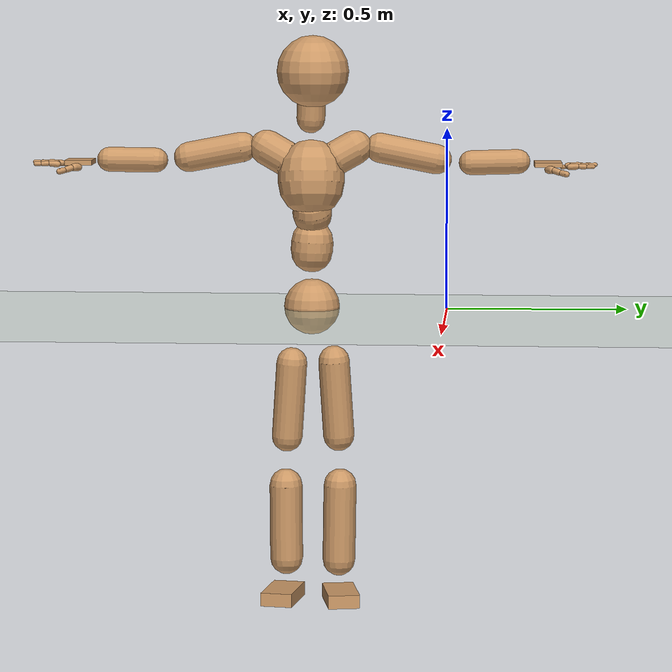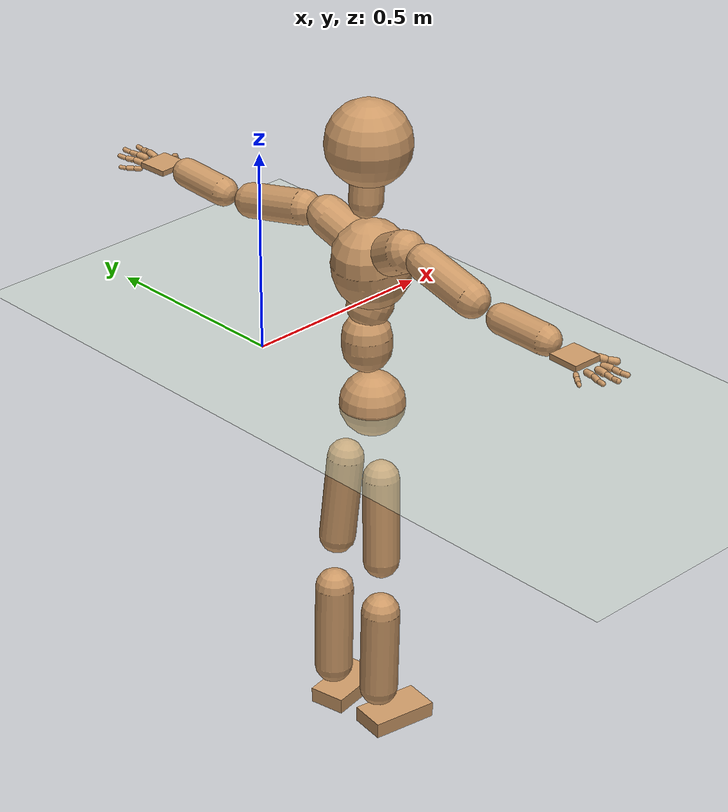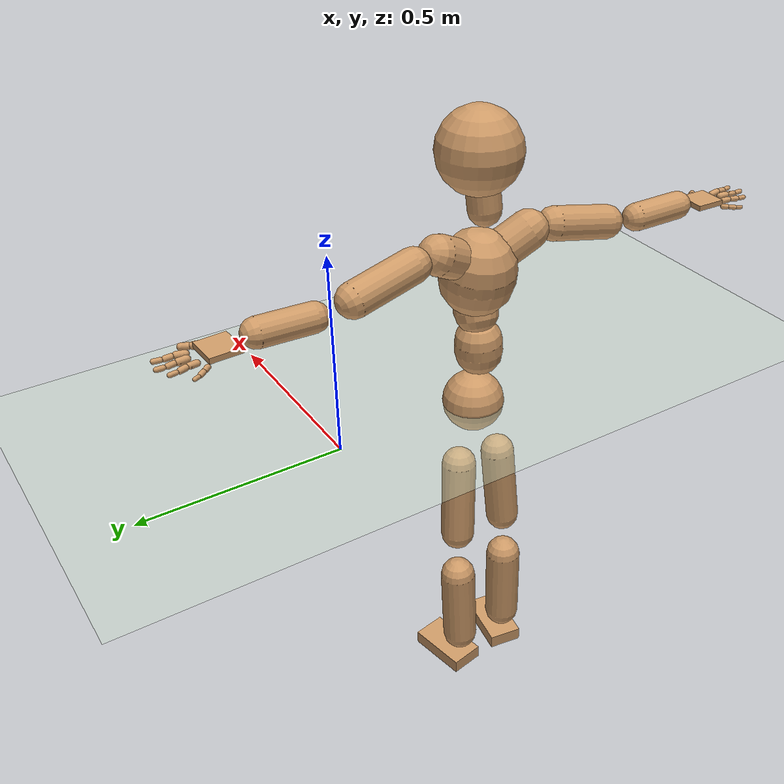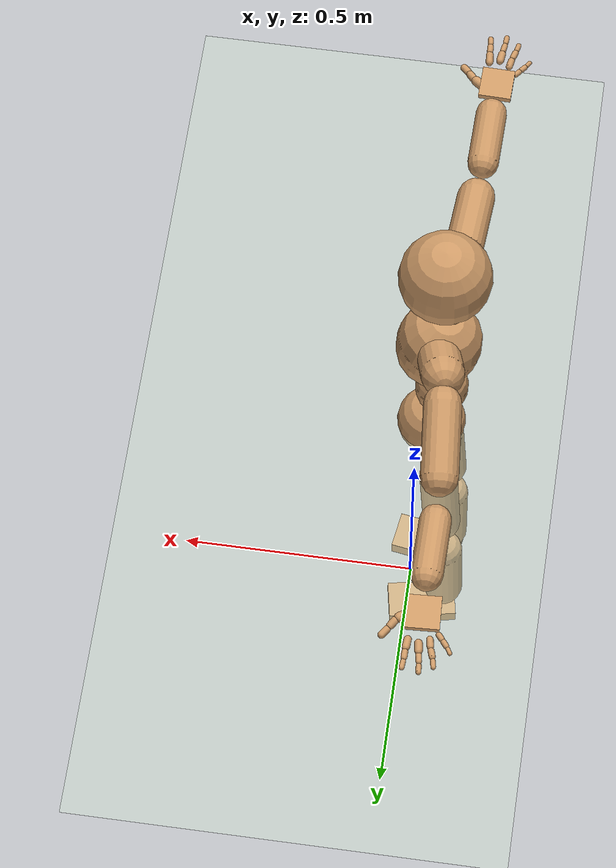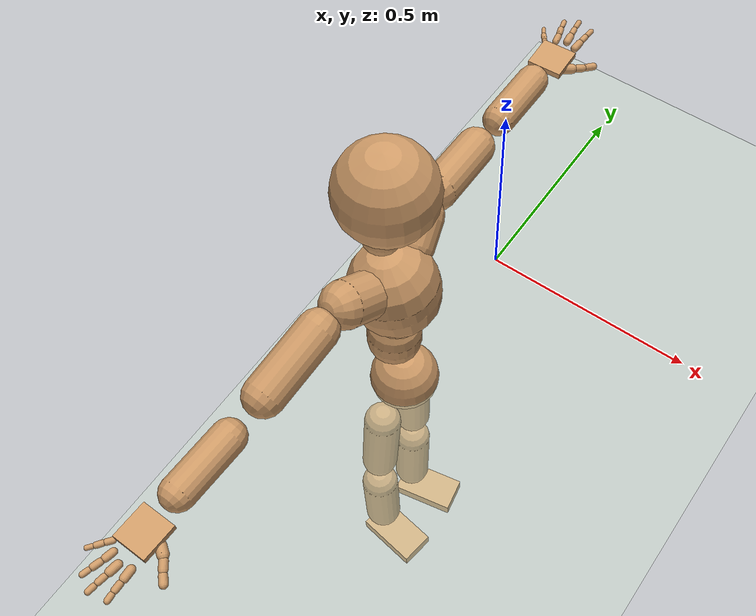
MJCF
<mujoco model="humanoid">
  <compiler coordinate="local" angle="radian"/>
  <default>
    <joint damping="0.0" armature="0.01" stiffness="0.0" limited="true"/>
    <geom conaffinity="1" condim="3" contype="7" margin="0.001" rgba="0.8 0.6 .4 1"/>
  </default>
  <asset>
    <texture type="skybox" builtin="gradient" rgb1=".4 .5 .6" rgb2="0 0 0" width="100" height="100"/>
    <texture builtin="flat" height="1278" mark="cross" markrgb="1 1 1" name="texgeom" random="0.01" rgb1="0.8 0.6 0.4" rgb2="0.8 0.6 0.4" type="cube" width="127"/>
    <texture builtin="checker" height="100" name="texplane" rgb1="0 0 0" rgb2="0.8 0.8 0.8" type="2d" width="100"/>
    <material name="MatPlane" reflectance="0.5" shininess="1" specular="1" texrepeat="60 60" texture="texplane"/>
    <material name="geom" texture="texgeom" texuniform="true"/>
  </asset>
  <worldbody>
    <light cutoff="100" diffuse="1 1 1" dir="-0 0 -1.3" directional="true" exponent="1" pos="0 0 1.3" specular=".1 .1 .1"/>
    <geom conaffinity="1" condim="3" name="floor" pos="0 0 0" rgba="0.8 0.9 0.8 1" size="100 100 .2" type="plane" material="MatPlane"/>
    <body name="Pelvis" pos="0 -0.3754 0.0023">
      <freejoint name="Pelvis"/>
      <geom type="sphere" contype="1" conaffinity="1" density="500" size="0.0777" pos="0.0000 0.0000 0.0000" name="Pelvis"/>
      <body name="L_Hip" pos="-0.0227 0.0554 -0.087">
        <joint name="L_Hip_x" type="hinge" pos="0 0 0" axis="1 0 0" stiffness="800" damping="80" armature="0.02" range="-180.0000 180.0000"/>
        <joint name="L_Hip_y" type="hinge" pos="0 0 0" axis="0 1 0" stiffness="800" damping="80" armature="0.02" range="-180.0000 180.0000"/>
        <joint name="L_Hip_z" type="hinge" pos="0 0 0" axis="0 0 1" stiffness="800" damping="80" armature="0.02" range="-180.0000 180.0000"/>
        <geom type="capsule" contype="1" conaffinity="1" density="500" fromto="-0.0049 0.0042 -0.0715 -0.0195 0.0169 -0.2861" size="0.0436" name="L_Hip"/>
        <body name="L_Knee" pos="-0.0243 0.0211 -0.3576">
          <joint name="L_Knee_x" type="hinge" pos="0 0 0" axis="1 0 0" stiffness="800" damping="80" armature="0.02" range="-180.0000 180.0000"/>
          <joint name="L_Knee_y" type="hinge" pos="0 0 0" axis="0 1 0" stiffness="800" damping="80" armature="0.02" range="-180.0000 180.0000"/>
          <joint name="L_Knee_z" type="hinge" pos="0 0 0" axis="0 0 1" stiffness="800" damping="80" armature="0.02" range="-180.0000 180.0000"/>
          <geom type="capsule" contype="1" conaffinity="1" density="500" fromto="-0.0022 -0.0012 -0.0722 -0.0087 -0.0049 -0.2888" size="0.0461" name="L_Knee"/>
          <body name="L_Ankle" pos="-0.0108 -0.0061 -0.361">
            <joint name="L_Ankle_x" type="hinge" pos="0 0 0" axis="1 0 0" stiffness="800" damping="80" armature="0.02" range="-180.0000 180.0000"/>
            <joint name="L_Ankle_y" type="hinge" pos="0 0 0" axis="0 1 0" stiffness="800" damping="80" armature="0.02" range="-180.0000 180.0000"/>
            <joint name="L_Ankle_z" type="hinge" pos="0 0 0" axis="0 0 1" stiffness="800" damping="80" armature="0.02" range="-180.0000 180.0000"/>
            <geom type="box" contype="1" conaffinity="1" density="500" pos="0.0521 0.0095 -0.0220" size="0.0811 0.0444 0.019" quat="0.9959 0.0000 0.0000 0.0905" name="L_Ankle"/>
            <body name="L_Toe" pos="0.1042 0.0191 -0.0439">
              <joint name="L_Toe_x" type="hinge" pos="0 0 0" axis="1 0 0" stiffness="500" damping="50" armature="0.02" range="-180.0000 180.0000"/>
              <joint name="L_Toe_y" type="hinge" pos="0 0 0" axis="0 1 0" stiffness="500" damping="50" armature="0.02" range="-180.0000 180.0000"/>
              <joint name="L_Toe_z" type="hinge" pos="0 0 0" axis="0 0 1" stiffness="500" damping="50" armature="0.02" range="-180.0000 180.0000"/>
              <geom type="box" contype="1" conaffinity="1" density="500" pos="0.0000 0.0000 0.0227" size="0.0009 0.0022 0.001" quat="0.9952 0.0000 0.0000 0.0978" name="L_Toe"/>
            </body>
          </body>
        </body>
      </body>
      <body name="R_Hip" pos="-0.0243 -0.0544 -0.0943">
        <joint name="R_Hip_x" type="hinge" pos="0 0 0" axis="1 0 0" stiffness="800" damping="80" armature="0.02" range="-180.0000 180.0000"/>
        <joint name="R_Hip_y" type="hinge" pos="0 0 0" axis="0 1 0" stiffness="800" damping="80" armature="0.02" range="-180.0000 180.0000"/>
        <joint name="R_Hip_z" type="hinge" pos="0 0 0" axis="0 0 1" stiffness="800" damping="80" armature="0.02" range="-180.0000 180.0000"/>
        <geom type="capsule" contype="1" conaffinity="1" density="500" fromto="-0.0038 -0.0048 -0.0705 -0.0153 -0.0191 -0.2820" size="0.0433" name="R_Hip"/>
        <body name="R_Knee" pos="-0.0191 -0.0238 -0.3525">
          <joint name="R_Knee_x" type="hinge" pos="0 0 0" axis="1 0 0" stiffness="800" damping="80" armature="0.02" range="-180.0000 180.0000"/>
          <joint name="R_Knee_y" type="hinge" pos="0 0 0" axis="0 1 0" stiffness="800" damping="80" armature="0.02" range="-180.0000 180.0000"/>
          <joint name="R_Knee_z" type="hinge" pos="0 0 0" axis="0 0 1" stiffness="800" damping="80" armature="0.02" range="-180.0000 180.0000"/>
          <geom type="capsule" contype="1" conaffinity="1" density="500" fromto="-0.0012 0.0003 -0.0706 -0.0049 0.0014 -0.2823" size="0.0462" name="R_Knee"/>
          <body name="R_Ankle" pos="-0.0061 0.0017 -0.3528">
            <joint name="R_Ankle_x" type="hinge" pos="0 0 0" axis="1 0 0" stiffness="800" damping="80" armature="0.02" range="-180.0000 180.0000"/>
            <joint name="R_Ankle_y" type="hinge" pos="0 0 0" axis="0 1 0" stiffness="800" damping="80" armature="0.02" range="-180.0000 180.0000"/>
            <joint name="R_Ankle_z" type="hinge" pos="0 0 0" axis="0 0 1" stiffness="800" damping="80" armature="0.02" range="-180.0000 180.0000"/>
            <geom type="box" contype="1" conaffinity="1" density="500" pos="0.0488 -0.0076 -0.0239" size="0.0811 0.0444 0.019" quat="0.9970 0.0000 0.0000 -0.0771" name="R_Ankle"/>
            <body name="R_Toe" pos="0.0976 -0.0152 -0.0478">
              <joint name="R_Toe_x" type="hinge" pos="0 0 0" axis="1 0 0" stiffness="500" damping="50" armature="0.02" range="-180.0000 180.0000"/>
              <joint name="R_Toe_y" type="hinge" pos="0 0 0" axis="0 1 0" stiffness="500" damping="50" armature="0.02" range="-180.0000 180.0000"/>
              <joint name="R_Toe_z" type="hinge" pos="0 0 0" axis="0 0 1" stiffness="500" damping="50" armature="0.02" range="-180.0000 180.0000"/>
              <geom type="box" contype="1" conaffinity="1" density="500" pos="0.0000 0.0000 0.0247" size="0.0009 0.0022 0.001" quat="0.9978 0.0000 0.0000 -0.0657" name="R_Toe"/>
            </body>
          </body>
        </body>
      </body>
      <body name="Torso" pos="-0.0193 -0.0039 0.0963">
        <joint name="Torso_x" type="hinge" pos="0 0 0" axis="1 0 0" stiffness="1000" damping="100" armature="0.02" range="-180.0000 180.0000"/>
        <joint name="Torso_y" type="hinge" pos="0 0 0" axis="0 1 0" stiffness="1000" damping="100" armature="0.02" range="-180.0000 180.0000"/>
        <joint name="Torso_z" type="hinge" pos="0 0 0" axis="0 0 1" stiffness="1000" damping="100" armature="0.02" range="-180.0000 180.0000"/>
        <geom type="capsule" contype="1" conaffinity="1" density="500" fromto="0.0004 0.0038 0.0848 0.0003 0.0025 0.0565" size="0.0588" name="Torso"/>
        <body name="Spine" pos="0.0007 0.0063 0.1413">
          <joint name="Spine_x" type="hinge" pos="0 0 0" axis="1 0 0" stiffness="1000" damping="100" armature="0.02" range="-180.0000 180.0000"/>
          <joint name="Spine_y" type="hinge" pos="0 0 0" axis="0 1 0" stiffness="1000" damping="100" armature="0.02" range="-180.0000 180.0000"/>
          <joint name="Spine_z" type="hinge" pos="0 0 0" axis="0 0 1" stiffness="1000" damping="100" armature="0.02" range="-180.0000 180.0000"/>
          <geom type="capsule" contype="1" conaffinity="1" density="500" fromto="0.0140 -0.0021 0.0294 0.0093 -0.0014 0.0196" size="0.0546" name="Spine"/>
          <body name="Chest" pos="0.0233 -0.0034 0.049">
            <joint name="Chest_x" type="hinge" pos="0 0 0" axis="1 0 0" stiffness="1000" damping="100" armature="0.02" range="-180.0000 180.0000"/>
            <joint name="Chest_y" type="hinge" pos="0 0 0" axis="0 1 0" stiffness="1000" damping="100" armature="0.02" range="-180.0000 180.0000"/>
            <joint name="Chest_z" type="hinge" pos="0 0 0" axis="0 0 1" stiffness="1000" damping="100" armature="0.02" range="-180.0000 180.0000"/>
            <geom type="capsule" contype="1" conaffinity="1" density="500" fromto="-0.0146 -0.0013 0.0869 -0.0097 -0.0009 0.0579" size="0.0924" name="Chest"/>
            <body name="Neck" pos="-0.036 -0.005 0.2022">
              <joint name="Neck_x" type="hinge" pos="0 0 0" axis="1 0 0" stiffness="500" damping="50" armature="0.02" range="-180.0000 180.0000"/>
              <joint name="Neck_y" type="hinge" pos="0 0 0" axis="0 1 0" stiffness="500" damping="50" armature="0.02" range="-180.0000 180.0000"/>
              <joint name="Neck_z" type="hinge" pos="0 0 0" axis="0 0 1" stiffness="500" damping="50" armature="0.02" range="-180.0000 180.0000"/>
              <geom type="capsule" contype="1" conaffinity="1" density="500" fromto="0.0035 0.0017 0.0330 0.0140 0.0068 0.1319" size="0.0397" name="Neck"/>
              <body name="Head" pos="0.0175 0.0085 0.1648">
                <joint name="Head_x" type="hinge" pos="0 0 0" axis="1 0 0" stiffness="500" damping="50" armature="0.02" range="-180.0000 180.0000"/>
                <joint name="Head_y" type="hinge" pos="0 0 0" axis="0 1 0" stiffness="500" damping="50" armature="0.02" range="-180.0000 180.0000"/>
                <joint name="Head_z" type="hinge" pos="0 0 0" axis="0 0 1" stiffness="500" damping="50" armature="0.02" range="-180.0000 180.0000"/>
                <geom type="sphere" contype="1" conaffinity="1" density="500" size="0.1002" pos="0.0000 0.0000 0.0000" name="Head"/>
              </body>
            </body>
            <body name="L_Thorax" pos="-0.0159 0.0507 0.1183">
              <joint name="L_Thorax_x" type="hinge" pos="0 0 0" axis="1 0 0" stiffness="500" damping="50" armature="0.02" range="-180.0000 180.0000"/>
              <joint name="L_Thorax_y" type="hinge" pos="0 0 0" axis="0 1 0" stiffness="500" damping="50" armature="0.02" range="-180.0000 180.0000"/>
              <joint name="L_Thorax_z" type="hinge" pos="0 0 0" axis="0 0 1" stiffness="500" damping="50" armature="0.02" range="-180.0000 180.0000"/>
              <geom type="capsule" contype="1" conaffinity="1" density="500" fromto="-0.0042 0.0172 0.0094 -0.0169 0.0687 0.0377" size="0.0478" name="L_Thorax"/>
              <body name="L_Shoulder" pos="-0.0211 0.0859 0.0471">
                <joint name="L_Shoulder_x" type="hinge" pos="0 0 0" axis="1 0 0" stiffness="500" damping="50" armature="0.02" range="-180.0000 180.0000"/>
                <joint name="L_Shoulder_y" type="hinge" pos="0 0 0" axis="0 1 0" stiffness="500" damping="50" armature="0.02" range="-180.0000 180.0000"/>
                <joint name="L_Shoulder_z" type="hinge" pos="0 0 0" axis="0 0 1" stiffness="500" damping="50" armature="0.02" range="-180.0000 180.0000"/>
                <geom type="capsule" contype="1" conaffinity="1" density="500" fromto="-0.0045 0.0524 -0.0108 -0.0181 0.2095 -0.0431" size="0.0414" name="L_Shoulder"/>
                <body name="L_Elbow" pos="-0.0226 0.2619 -0.0538">
                  <joint name="L_Elbow_x" type="hinge" pos="0 0 0" axis="1 0 0" stiffness="500" damping="50" armature="0.02" range="-720.0000 720.0000"/>
                  <joint name="L_Elbow_y" type="hinge" pos="0 0 0" axis="0 1 0" stiffness="500" damping="50" armature="0.02" range="-720.0000 720.0000"/>
                  <joint name="L_Elbow_z" type="hinge" pos="0 0 0" axis="0 0 1" stiffness="500" damping="50" armature="0.02" range="-720.0000 720.0000"/>
                  <geom type="capsule" contype="1" conaffinity="1" density="500" fromto="0.0006 0.0432 0.0013 0.0023 0.1728 0.0053" size="0.0343" name="L_Elbow"/>
                  <body name="L_Wrist" pos="0.0029 0.216 0.0066">
                    <joint name="L_Wrist_x" type="hinge" pos="0 0 0" axis="1 0 0" stiffness="300" damping="30" armature="0.02" range="-180.0000 180.0000"/>
                    <joint name="L_Wrist_y" type="hinge" pos="0 0 0" axis="0 1 0" stiffness="300" damping="30" armature="0.02" range="-180.0000 180.0000"/>
                    <joint name="L_Wrist_z" type="hinge" pos="0 0 0" axis="0 0 1" stiffness="300" damping="30" armature="0.02" range="-180.0000 180.0000"/>
                    <geom type="box" contype="1" conaffinity="1" density="500" pos="-0.0019 0.0401 -0.0080" size="0.0375 0.0386 0.0066" quat="0.7236 0.0000 0.0000 -0.6903" name="L_Wrist"/>
                    <body name="L_Index1" pos="0.02 0.0947 -0.0142">
                      <joint name="L_Index1_x" type="hinge" pos="0 0 0" axis="1 0 0" stiffness="100" damping="10" armature="0.02" range="-180.0000 180.0000"/>
                      <joint name="L_Index1_y" type="hinge" pos="0 0 0" axis="0 1 0" stiffness="100" damping="10" armature="0.02" range="-180.0000 180.0000"/>
                      <joint name="L_Index1_z" type="hinge" pos="0 0 0" axis="0 0 1" stiffness="100" damping="10" armature="0.02" range="-180.0000 180.0000"/>
                      <geom type="capsule" contype="1" conaffinity="1" density="500" fromto="0.0005 0.0061 0.0005 0.0021 0.0242 0.0021" size="0.0084" name="L_Index1"/>
                      <body name="L_Index2" pos="0.0026 0.0303 0.0026">
                        <joint name="L_Index2_x" type="hinge" pos="0 0 0" axis="1 0 0" stiffness="100" damping="10" armature="0.02" range="-180.0000 180.0000"/>
                        <joint name="L_Index2_y" type="hinge" pos="0 0 0" axis="0 1 0" stiffness="100" damping="10" armature="0.02" range="-180.0000 180.0000"/>
                        <joint name="L_Index2_z" type="hinge" pos="0 0 0" axis="0 0 1" stiffness="100" damping="10" armature="0.02" range="-180.0000 180.0000"/>
                        <geom type="capsule" contype="1" conaffinity="1" density="500" fromto="0.0001 0.0043 -0.0003 0.0003 0.0171 -0.0011" size="0.0069" name="L_Index2"/>
                        <body name="L_Index3" pos="0.0004 0.0214 -0.0013">
                          <joint name="L_Index3_x" type="hinge" pos="0 0 0" axis="1 0 0" stiffness="100" damping="10" armature="0.02" range="-180.0000 180.0000"/>
                          <joint name="L_Index3_y" type="hinge" pos="0 0 0" axis="0 1 0" stiffness="100" damping="10" armature="0.02" range="-180.0000 180.0000"/>
                          <joint name="L_Index3_z" type="hinge" pos="0 0 0" axis="0 0 1" stiffness="100" damping="10" armature="0.02" range="-180.0000 180.0000"/>
                          <geom type="capsule" contype="1" conaffinity="1" density="500" fromto="0.0005 0.0047 0.0001 0.0019 0.0187 0.0005" size="0.0059" name="L_Index3"/>
                        </body>
                      </body>
                    </body>
                    <body name="L_Middle1" pos="-0.0018 0.1012 -0.0121">
                      <joint name="L_Middle1_x" type="hinge" pos="0 0 0" axis="1 0 0" stiffness="100" damping="10" armature="0.02" range="-180.0000 180.0000"/>
                      <joint name="L_Middle1_y" type="hinge" pos="0 0 0" axis="0 1 0" stiffness="100" damping="10" armature="0.02" range="-180.0000 180.0000"/>
                      <joint name="L_Middle1_z" type="hinge" pos="0 0 0" axis="0 0 1" stiffness="100" damping="10" armature="0.02" range="-180.0000 180.0000"/>
                      <geom type="capsule" contype="1" conaffinity="1" density="500" fromto="-0.0008 0.0057 0.0002 -0.0031 0.0230 0.0009" size="0.0086" name="L_Middle1"/>
                      <body name="L_Middle2" pos="-0.0038 0.0287 0.0012">
                        <joint name="L_Middle2_x" type="hinge" pos="0 0 0" axis="1 0 0" stiffness="100" damping="10" armature="0.02" range="-180.0000 180.0000"/>
                        <joint name="L_Middle2_y" type="hinge" pos="0 0 0" axis="0 1 0" stiffness="100" damping="10" armature="0.02" range="-180.0000 180.0000"/>
                        <joint name="L_Middle2_z" type="hinge" pos="0 0 0" axis="0 0 1" stiffness="100" damping="10" armature="0.02" range="-180.0000 180.0000"/>
                        <geom type="capsule" contype="1" conaffinity="1" density="500" fromto="-0.0007 0.0045 -0.0001 -0.0030 0.0179 -0.0004" size="0.0065" name="L_Middle2"/>
                        <body name="L_Middle3" pos="-0.0037 0.0224 -0.0005">
                          <joint name="L_Middle3_x" type="hinge" pos="0 0 0" axis="1 0 0" stiffness="100" damping="10" armature="0.02" range="-180.0000 180.0000"/>
                          <joint name="L_Middle3_y" type="hinge" pos="0 0 0" axis="0 1 0" stiffness="100" damping="10" armature="0.02" range="-180.0000 180.0000"/>
                          <joint name="L_Middle3_z" type="hinge" pos="0 0 0" axis="0 0 1" stiffness="100" damping="10" armature="0.02" range="-180.0000 180.0000"/>
                          <geom type="capsule" contype="1" conaffinity="1" density="500" fromto="-0.0003 0.0049 0.0003 -0.0014 0.0195 0.0012" size="0.0058" name="L_Middle3"/>
                        </body>
                      </body>
                    </body>
                    <body name="L_Pinky1" pos="-0.0393 0.0769 -0.0192">
                      <joint name="L_Pinky1_x" type="hinge" pos="0 0 0" axis="1 0 0" stiffness="100" damping="10" armature="0.02" range="-180.0000 180.0000"/>
                      <joint name="L_Pinky1_y" type="hinge" pos="0 0 0" axis="0 1 0" stiffness="100" damping="10" armature="0.02" range="-180.0000 180.0000"/>
                      <joint name="L_Pinky1_z" type="hinge" pos="0 0 0" axis="0 0 1" stiffness="100" damping="10" armature="0.02" range="-180.0000 180.0000"/>
                      <geom type="capsule" contype="1" conaffinity="1" density="500" fromto="-0.0023 0.0028 -0.0001 -0.0092 0.0111 -0.0003" size="0.0062" name="L_Pinky1"/>
                      <body name="L_Pinky2" pos="-0.0115 0.0139 -0.0003">
                        <joint name="L_Pinky2_x" type="hinge" pos="0 0 0" axis="1 0 0" stiffness="100" damping="10" armature="0.02" range="-180.0000 180.0000"/>
                        <joint name="L_Pinky2_y" type="hinge" pos="0 0 0" axis="0 1 0" stiffness="100" damping="10" armature="0.02" range="-180.0000 180.0000"/>
                        <joint name="L_Pinky2_z" type="hinge" pos="0 0 0" axis="0 0 1" stiffness="100" damping="10" armature="0.02" range="-180.0000 180.0000"/>
                        <geom type="capsule" contype="1" conaffinity="1" density="500" fromto="-0.0022 0.0028 -0.0001 -0.0089 0.0113 -0.0006" size="0.0061" name="L_Pinky2"/>
                        <body name="L_Pinky3" pos="-0.0112 0.0142 -0.0007">
                          <joint name="L_Pinky3_x" type="hinge" pos="0 0 0" axis="1 0 0" stiffness="100" damping="10" armature="0.02" range="-180.0000 180.0000"/>
                          <joint name="L_Pinky3_y" type="hinge" pos="0 0 0" axis="0 1 0" stiffness="100" damping="10" armature="0.02" range="-180.0000 180.0000"/>
                          <joint name="L_Pinky3_z" type="hinge" pos="0 0 0" axis="0 0 1" stiffness="100" damping="10" armature="0.02" range="-180.0000 180.0000"/>
                          <geom type="capsule" contype="1" conaffinity="1" density="500" fromto="-0.0018 0.0032 0.0003 -0.0073 0.0129 0.0010" size="0.0047" name="L_Pinky3"/>
                        </body>
                      </body>
                    </body>
                    <body name="L_Ring1" pos="-0.0238 0.0896 -0.0143">
                      <joint name="L_Ring1_x" type="hinge" pos="0 0 0" axis="1 0 0" stiffness="100" damping="10" armature="0.02" range="-180.0000 180.0000"/>
                      <joint name="L_Ring1_y" type="hinge" pos="0 0 0" axis="0 1 0" stiffness="100" damping="10" armature="0.02" range="-180.0000 180.0000"/>
                      <joint name="L_Ring1_z" type="hinge" pos="0 0 0" axis="0 0 1" stiffness="100" damping="10" armature="0.02" range="-180.0000 180.0000"/>
                      <geom type="capsule" contype="1" conaffinity="1" density="500" fromto="-0.0010 0.0052 0.0004 -0.0041 0.0210 0.0015" size="0.0075" name="L_Ring1"/>
                      <body name="L_Ring2" pos="-0.0052 0.0262 0.0019">
                        <joint name="L_Ring2_x" type="hinge" pos="0 0 0" axis="1 0 0" stiffness="100" damping="10" armature="0.02" range="-180.0000 180.0000"/>
                        <joint name="L_Ring2_y" type="hinge" pos="0 0 0" axis="0 1 0" stiffness="100" damping="10" armature="0.02" range="-180.0000 180.0000"/>
                        <joint name="L_Ring2_z" type="hinge" pos="0 0 0" axis="0 0 1" stiffness="100" damping="10" armature="0.02" range="-180.0000 180.0000"/>
                        <geom type="capsule" contype="1" conaffinity="1" density="500" fromto="-0.0014 0.0043 -0.0002 -0.0055 0.0171 -0.0006" size="0.007" name="L_Ring2"/>
                        <body name="L_Ring3" pos="-0.0068 0.0214 -0.0008">
                          <joint name="L_Ring3_x" type="hinge" pos="0 0 0" axis="1 0 0" stiffness="100" damping="10" armature="0.02" range="-180.0000 180.0000"/>
                          <joint name="L_Ring3_y" type="hinge" pos="0 0 0" axis="0 1 0" stiffness="100" damping="10" armature="0.02" range="-180.0000 180.0000"/>
                          <joint name="L_Ring3_z" type="hinge" pos="0 0 0" axis="0 0 1" stiffness="100" damping="10" armature="0.02" range="-180.0000 180.0000"/>
                          <geom type="capsule" contype="1" conaffinity="1" density="500" fromto="-0.0010 0.0047 0.0002 -0.0039 0.0187 0.0010" size="0.0055" name="L_Ring3"/>
                        </body>
                      </body>
                    </body>
                    <body name="L_Thumb1" pos="0.026 0.0385 -0.0206">
                      <joint name="L_Thumb1_x" type="hinge" pos="0 0 0" axis="1 0 0" stiffness="100" damping="10" armature="0.02" range="-180.0000 180.0000"/>
                      <joint name="L_Thumb1_y" type="hinge" pos="0 0 0" axis="0 1 0" stiffness="100" damping="10" armature="0.02" range="-180.0000 180.0000"/>
                      <joint name="L_Thumb1_z" type="hinge" pos="0 0 0" axis="0 0 1" stiffness="100" damping="10" armature="0.02" range="-180.0000 180.0000"/>
                      <geom type="capsule" contype="1" conaffinity="1" density="500" fromto="0.0046 0.0032 0.0001 0.0185 0.0129 0.0003" size="0.0109" name="L_Thumb1"/>
                      <body name="L_Thumb2" pos="0.0232 0.0162 0.0003">
                        <joint name="L_Thumb2_x" type="hinge" pos="0 0 0" axis="1 0 0" stiffness="100" damping="10" armature="0.02" range="-180.0000 180.0000"/>
                        <joint name="L_Thumb2_y" type="hinge" pos="0 0 0" axis="0 1 0" stiffness="100" damping="10" armature="0.02" range="-180.0000 180.0000"/>
                        <joint name="L_Thumb2_z" type="hinge" pos="0 0 0" axis="0 0 1" stiffness="100" damping="10" armature="0.02" range="-180.0000 180.0000"/>
                        <geom type="capsule" contype="1" conaffinity="1" density="500" fromto="0.0028 0.0039 -0.0011 0.0112 0.0155 -0.0045" size="0.0086" name="L_Thumb2"/>
                        <body name="L_Thumb3" pos="0.0139 0.0194 -0.0056">
                          <joint name="L_Thumb3_x" type="hinge" pos="0 0 0" axis="1 0 0" stiffness="100" damping="10" armature="0.02" range="-180.0000 180.0000"/>
                          <joint name="L_Thumb3_y" type="hinge" pos="0 0 0" axis="0 1 0" stiffness="100" damping="10" armature="0.02" range="-180.0000 180.0000"/>
                          <joint name="L_Thumb3_z" type="hinge" pos="0 0 0" axis="0 0 1" stiffness="100" damping="10" armature="0.02" range="-180.0000 180.0000"/>
                          <geom type="capsule" contype="1" conaffinity="1" density="500" fromto="0.0032 0.0043 -0.0007 0.0128 0.0171 -0.0029" size="0.0081" name="L_Thumb3"/>
                        </body>
                      </body>
                    </body>
                  </body>
                </body>
              </body>
            </body>
            <body name="R_Thorax" pos="-0.0209 -0.0523 0.114">
              <joint name="R_Thorax_x" type="hinge" pos="0 0 0" axis="1 0 0" stiffness="500" damping="50" armature="0.02" range="-180.0000 180.0000"/>
              <joint name="R_Thorax_y" type="hinge" pos="0 0 0" axis="0 1 0" stiffness="500" damping="50" armature="0.02" range="-180.0000 180.0000"/>
              <joint name="R_Thorax_z" type="hinge" pos="0 0 0" axis="0 0 1" stiffness="500" damping="50" armature="0.02" range="-180.0000 180.0000"/>
              <geom type="capsule" contype="1" conaffinity="1" density="500" fromto="-0.0032 -0.0185 0.0102 -0.0129 -0.0738 0.0410" size="0.0487" name="R_Thorax"/>
              <body name="R_Shoulder" pos="-0.0161 -0.0923 0.0512">
                <joint name="R_Shoulder_x" type="hinge" pos="0 0 0" axis="1 0 0" stiffness="500" damping="50" armature="0.02" range="-180.0000 180.0000"/>
                <joint name="R_Shoulder_y" type="hinge" pos="0 0 0" axis="0 1 0" stiffness="500" damping="50" armature="0.02" range="-180.0000 180.0000"/>
                <joint name="R_Shoulder_z" type="hinge" pos="0 0 0" axis="0 0 1" stiffness="500" damping="50" armature="0.02" range="-180.0000 180.0000"/>
                <geom type="capsule" contype="1" conaffinity="1" density="500" fromto="-0.0031 -0.0504 -0.0099 -0.0124 -0.2015 -0.0397" size="0.0418" name="R_Shoulder"/>
                <body name="R_Elbow" pos="-0.0156 -0.2519 -0.0497">
                  <joint name="R_Elbow_x" type="hinge" pos="0 0 0" axis="1 0 0" stiffness="500" damping="50" armature="0.02" range="-720.0000 720.0000"/>
                  <joint name="R_Elbow_y" type="hinge" pos="0 0 0" axis="0 1 0" stiffness="500" damping="50" armature="0.02" range="-720.0000 720.0000"/>
                  <joint name="R_Elbow_z" type="hinge" pos="0 0 0" axis="0 0 1" stiffness="500" damping="50" armature="0.02" range="-720.0000 720.0000"/>
                  <geom type="capsule" contype="1" conaffinity="1" density="500" fromto="-0.0011 -0.0434 0.0004 -0.0043 -0.1737 0.0016" size="0.0345" name="R_Elbow"/>
                  <body name="R_Wrist" pos="-0.0054 -0.2172 0.002">
                    <joint name="R_Wrist_x" type="hinge" pos="0 0 0" axis="1 0 0" stiffness="300" damping="30" armature="0.02" range="-180.0000 180.0000"/>
                    <joint name="R_Wrist_y" type="hinge" pos="0 0 0" axis="0 1 0" stiffness="300" damping="30" armature="0.02" range="-180.0000 180.0000"/>
                    <joint name="R_Wrist_z" type="hinge" pos="0 0 0" axis="0 0 1" stiffness="300" damping="30" armature="0.02" range="-180.0000 180.0000"/>
                    <geom type="box" contype="1" conaffinity="1" density="500" pos="-0.0013 -0.0396 -0.0077" size="0.0375 0.0363 0.0068" quat="0.7182 0.0000 0.0000 0.6958" name="R_Wrist"/>
                    <body name="R_Index1" pos="0.0213 -0.0937 -0.0135">
                      <joint name="R_Index1_x" type="hinge" pos="0 0 0" axis="1 0 0" stiffness="100" damping="10" armature="0.02" range="-180.0000 180.0000"/>
                      <joint name="R_Index1_y" type="hinge" pos="0 0 0" axis="0 1 0" stiffness="100" damping="10" armature="0.02" range="-180.0000 180.0000"/>
                      <joint name="R_Index1_z" type="hinge" pos="0 0 0" axis="0 0 1" stiffness="100" damping="10" armature="0.02" range="-180.0000 180.0000"/>
                      <geom type="capsule" contype="1" conaffinity="1" density="500" fromto="0.0005 -0.0061 0.0005 0.0021 -0.0242 0.0021" size="0.0084" name="R_Index1"/>
                      <body name="R_Index2" pos="0.0026 -0.0303 0.0026">
                        <joint name="R_Index2_x" type="hinge" pos="0 0 0" axis="1 0 0" stiffness="100" damping="10" armature="0.02" range="-180.0000 180.0000"/>
                        <joint name="R_Index2_y" type="hinge" pos="0 0 0" axis="0 1 0" stiffness="100" damping="10" armature="0.02" range="-180.0000 180.0000"/>
                        <joint name="R_Index2_z" type="hinge" pos="0 0 0" axis="0 0 1" stiffness="100" damping="10" armature="0.02" range="-180.0000 180.0000"/>
                        <geom type="capsule" contype="1" conaffinity="1" density="500" fromto="0.0001 -0.0043 -0.0003 0.0003 -0.0171 -0.0011" size="0.0069" name="R_Index2"/>
                        <body name="R_Index3" pos="0.0004 -0.0214 -0.0013">
                          <joint name="R_Index3_x" type="hinge" pos="0 0 0" axis="1 0 0" stiffness="100" damping="10" armature="0.02" range="-180.0000 180.0000"/>
                          <joint name="R_Index3_y" type="hinge" pos="0 0 0" axis="0 1 0" stiffness="100" damping="10" armature="0.02" range="-180.0000 180.0000"/>
                          <joint name="R_Index3_z" type="hinge" pos="0 0 0" axis="0 0 1" stiffness="100" damping="10" armature="0.02" range="-180.0000 180.0000"/>
                          <geom type="capsule" contype="1" conaffinity="1" density="500" fromto="0.0005 -0.0039 0.0001 0.0019 -0.0155 0.0005" size="0.0061" name="R_Index3"/>
                        </body>
                      </body>
                    </body>
                    <body name="R_Middle1" pos="-0.0006 -0.1003 -0.0114">
                      <joint name="R_Middle1_x" type="hinge" pos="0 0 0" axis="1 0 0" stiffness="100" damping="10" armature="0.02" range="-180.0000 180.0000"/>
                      <joint name="R_Middle1_y" type="hinge" pos="0 0 0" axis="0 1 0" stiffness="100" damping="10" armature="0.02" range="-180.0000 180.0000"/>
                      <joint name="R_Middle1_z" type="hinge" pos="0 0 0" axis="0 0 1" stiffness="100" damping="10" armature="0.02" range="-180.0000 180.0000"/>
                      <geom type="capsule" contype="1" conaffinity="1" density="500" fromto="-0.0008 -0.0057 0.0002 -0.0031 -0.0230 0.0009" size="0.0086" name="R_Middle1"/>
                      <body name="R_Middle2" pos="-0.0038 -0.0287 0.0012">
                        <joint name="R_Middle2_x" type="hinge" pos="0 0 0" axis="1 0 0" stiffness="100" damping="10" armature="0.02" range="-180.0000 180.0000"/>
                        <joint name="R_Middle2_y" type="hinge" pos="0 0 0" axis="0 1 0" stiffness="100" damping="10" armature="0.02" range="-180.0000 180.0000"/>
                        <joint name="R_Middle2_z" type="hinge" pos="0 0 0" axis="0 0 1" stiffness="100" damping="10" armature="0.02" range="-180.0000 180.0000"/>
                        <geom type="capsule" contype="1" conaffinity="1" density="500" fromto="-0.0007 -0.0045 -0.0001 -0.0030 -0.0179 -0.0004" size="0.0065" name="R_Middle2"/>
                        <body name="R_Middle3" pos="-0.0037 -0.0224 -0.0005">
                          <joint name="R_Middle3_x" type="hinge" pos="0 0 0" axis="1 0 0" stiffness="100" damping="10" armature="0.02" range="-180.0000 180.0000"/>
                          <joint name="R_Middle3_y" type="hinge" pos="0 0 0" axis="0 1 0" stiffness="100" damping="10" armature="0.02" range="-180.0000 180.0000"/>
                          <joint name="R_Middle3_z" type="hinge" pos="0 0 0" axis="0 0 1" stiffness="100" damping="10" armature="0.02" range="-180.0000 180.0000"/>
                          <geom type="capsule" contype="1" conaffinity="1" density="500" fromto="-0.0003 -0.0041 0.0003 -0.0014 -0.0163 0.0012" size="0.0061" name="R_Middle3"/>
                        </body>
                      </body>
                    </body>
                    <body name="R_Pinky1" pos="-0.038 -0.0759 -0.0185">
                      <joint name="R_Pinky1_x" type="hinge" pos="0 0 0" axis="1 0 0" stiffness="100" damping="10" armature="0.02" range="-180.0000 180.0000"/>
                      <joint name="R_Pinky1_y" type="hinge" pos="0 0 0" axis="0 1 0" stiffness="100" damping="10" armature="0.02" range="-180.0000 180.0000"/>
                      <joint name="R_Pinky1_z" type="hinge" pos="0 0 0" axis="0 0 1" stiffness="100" damping="10" armature="0.02" range="-180.0000 180.0000"/>
                      <geom type="capsule" contype="1" conaffinity="1" density="500" fromto="-0.0023 -0.0028 -0.0001 -0.0092 -0.0111 -0.0003" size="0.0062" name="R_Pinky1"/>
                      <body name="R_Pinky2" pos="-0.0115 -0.0139 -0.0003">
                        <joint name="R_Pinky2_x" type="hinge" pos="0 0 0" axis="1 0 0" stiffness="100" damping="10" armature="0.02" range="-180.0000 180.0000"/>
                        <joint name="R_Pinky2_y" type="hinge" pos="0 0 0" axis="0 1 0" stiffness="100" damping="10" armature="0.02" range="-180.0000 180.0000"/>
                        <joint name="R_Pinky2_z" type="hinge" pos="0 0 0" axis="0 0 1" stiffness="100" damping="10" armature="0.02" range="-180.0000 180.0000"/>
                        <geom type="capsule" contype="1" conaffinity="1" density="500" fromto="-0.0022 -0.0028 -0.0001 -0.0089 -0.0113 -0.0006" size="0.0061" name="R_Pinky2"/>
                        <body name="R_Pinky3" pos="-0.0112 -0.0142 -0.0007">
                          <joint name="R_Pinky3_x" type="hinge" pos="0 0 0" axis="1 0 0" stiffness="100" damping="10" armature="0.02" range="-180.0000 180.0000"/>
                          <joint name="R_Pinky3_y" type="hinge" pos="0 0 0" axis="0 1 0" stiffness="100" damping="10" armature="0.02" range="-180.0000 180.0000"/>
                          <joint name="R_Pinky3_z" type="hinge" pos="0 0 0" axis="0 0 1" stiffness="100" damping="10" armature="0.02" range="-180.0000 180.0000"/>
                          <geom type="capsule" contype="1" conaffinity="1" density="500" fromto="-0.0018 -0.0024 0.0003 -0.0073 -0.0097 0.0010" size="0.0049" name="R_Pinky3"/>
                        </body>
                      </body>
                    </body>
                    <body name="R_Ring1" pos="-0.0225 -0.0886 -0.0136">
                      <joint name="R_Ring1_x" type="hinge" pos="0 0 0" axis="1 0 0" stiffness="100" damping="10" armature="0.02" range="-180.0000 180.0000"/>
                      <joint name="R_Ring1_y" type="hinge" pos="0 0 0" axis="0 1 0" stiffness="100" damping="10" armature="0.02" range="-180.0000 180.0000"/>
                      <joint name="R_Ring1_z" type="hinge" pos="0 0 0" axis="0 0 1" stiffness="100" damping="10" armature="0.02" range="-180.0000 180.0000"/>
                      <geom type="capsule" contype="1" conaffinity="1" density="500" fromto="-0.0010 -0.0052 0.0004 -0.0041 -0.0210 0.0015" size="0.0075" name="R_Ring1"/>
                      <body name="R_Ring2" pos="-0.0052 -0.0262 0.0019">
                        <joint name="R_Ring2_x" type="hinge" pos="0 0 0" axis="1 0 0" stiffness="100" damping="10" armature="0.02" range="-180.0000 180.0000"/>
                        <joint name="R_Ring2_y" type="hinge" pos="0 0 0" axis="0 1 0" stiffness="100" damping="10" armature="0.02" range="-180.0000 180.0000"/>
                        <joint name="R_Ring2_z" type="hinge" pos="0 0 0" axis="0 0 1" stiffness="100" damping="10" armature="0.02" range="-180.0000 180.0000"/>
                        <geom type="capsule" contype="1" conaffinity="1" density="500" fromto="-0.0014 -0.0043 -0.0002 -0.0055 -0.0171 -0.0006" size="0.007" name="R_Ring2"/>
                        <body name="R_Ring3" pos="-0.0068 -0.0214 -0.0008">
                          <joint name="R_Ring3_x" type="hinge" pos="0 0 0" axis="1 0 0" stiffness="100" damping="10" armature="0.02" range="-180.0000 180.0000"/>
                          <joint name="R_Ring3_y" type="hinge" pos="0 0 0" axis="0 1 0" stiffness="100" damping="10" armature="0.02" range="-180.0000 180.0000"/>
                          <joint name="R_Ring3_z" type="hinge" pos="0 0 0" axis="0 0 1" stiffness="100" damping="10" armature="0.02" range="-180.0000 180.0000"/>
                          <geom type="capsule" contype="1" conaffinity="1" density="500" fromto="-0.0010 -0.0039 0.0002 -0.0039 -0.0155 0.0010" size="0.0058" name="R_Ring3"/>
                        </body>
                      </body>
                    </body>
                    <body name="R_Thumb1" pos="0.0273 -0.0375 -0.0199">
                      <joint name="R_Thumb1_x" type="hinge" pos="0 0 0" axis="1 0 0" stiffness="100" damping="10" armature="0.02" range="-180.0000 180.0000"/>
                      <joint name="R_Thumb1_y" type="hinge" pos="0 0 0" axis="0 1 0" stiffness="100" damping="10" armature="0.02" range="-180.0000 180.0000"/>
                      <joint name="R_Thumb1_z" type="hinge" pos="0 0 0" axis="0 0 1" stiffness="100" damping="10" armature="0.02" range="-180.0000 180.0000"/>
                      <geom type="capsule" contype="1" conaffinity="1" density="500" fromto="0.0046 -0.0032 0.0001 0.0185 -0.0129 0.0003" size="0.0109" name="R_Thumb1"/>
                      <body name="R_Thumb2" pos="0.0232 -0.0162 0.0003">
                        <joint name="R_Thumb2_x" type="hinge" pos="0 0 0" axis="1 0 0" stiffness="100" damping="10" armature="0.02" range="-180.0000 180.0000"/>
                        <joint name="R_Thumb2_y" type="hinge" pos="0 0 0" axis="0 1 0" stiffness="100" damping="10" armature="0.02" range="-180.0000 180.0000"/>
                        <joint name="R_Thumb2_z" type="hinge" pos="0 0 0" axis="0 0 1" stiffness="100" damping="10" armature="0.02" range="-180.0000 180.0000"/>
                        <geom type="capsule" contype="1" conaffinity="1" density="500" fromto="0.0028 -0.0039 -0.0011 0.0112 -0.0155 -0.0045" size="0.0086" name="R_Thumb2"/>
                        <body name="R_Thumb3" pos="0.0139 -0.0194 -0.0056">
                          <joint name="R_Thumb3_x" type="hinge" pos="0 0 0" axis="1 0 0" stiffness="100" damping="10" armature="0.02" range="-180.0000 180.0000"/>
                          <joint name="R_Thumb3_y" type="hinge" pos="0 0 0" axis="0 1 0" stiffness="100" damping="10" armature="0.02" range="-180.0000 180.0000"/>
                          <joint name="R_Thumb3_z" type="hinge" pos="0 0 0" axis="0 0 1" stiffness="100" damping="10" armature="0.02" range="-180.0000 180.0000"/>
                          <geom type="capsule" contype="1" conaffinity="1" density="500" fromto="0.0032 -0.0035 -0.0007 0.0128 -0.0139 -0.0029" size="0.0083" name="R_Thumb3"/>
                        </body>
                      </body>
                    </body>
                  </body>
                </body>
              </body>
            </body>
          </body>
        </body>
      </body>
    </body>
  </worldbody>
  <actuator>
    <motor name="L_Hip_x" joint="L_Hip_x" gear="500"/>
    <motor name="L_Hip_y" joint="L_Hip_y" gear="500"/>
    <motor name="L_Hip_z" joint="L_Hip_z" gear="500"/>
    <motor name="L_Knee_x" joint="L_Knee_x" gear="500"/>
    <motor name="L_Knee_y" joint="L_Knee_y" gear="500"/>
    <motor name="L_Knee_z" joint="L_Knee_z" gear="500"/>
    <motor name="L_Ankle_x" joint="L_Ankle_x" gear="500"/>
    <motor name="L_Ankle_y" joint="L_Ankle_y" gear="500"/>
    <motor name="L_Ankle_z" joint="L_Ankle_z" gear="500"/>
    <motor name="L_Toe_x" joint="L_Toe_x" gear="500"/>
    <motor name="L_Toe_y" joint="L_Toe_y" gear="500"/>
    <motor name="L_Toe_z" joint="L_Toe_z" gear="500"/>
    <motor name="R_Hip_x" joint="R_Hip_x" gear="500"/>
    <motor name="R_Hip_y" joint="R_Hip_y" gear="500"/>
    <motor name="R_Hip_z" joint="R_Hip_z" gear="500"/>
    <motor name="R_Knee_x" joint="R_Knee_x" gear="500"/>
    <motor name="R_Knee_y" joint="R_Knee_y" gear="500"/>
    <motor name="R_Knee_z" joint="R_Knee_z" gear="500"/>
    <motor name="R_Ankle_x" joint="R_Ankle_x" gear="500"/>
    <motor name="R_Ankle_y" joint="R_Ankle_y" gear="500"/>
    <motor name="R_Ankle_z" joint="R_Ankle_z" gear="500"/>
    <motor name="R_Toe_x" joint="R_Toe_x" gear="500"/>
    <motor name="R_Toe_y" joint="R_Toe_y" gear="500"/>
    <motor name="R_Toe_z" joint="R_Toe_z" gear="500"/>
    <motor name="Torso_x" joint="Torso_x" gear="500"/>
    <motor name="Torso_y" joint="Torso_y" gear="500"/>
    <motor name="Torso_z" joint="Torso_z" gear="500"/>
    <motor name="Spine_x" joint="Spine_x" gear="500"/>
    <motor name="Spine_y" joint="Spine_y" gear="500"/>
    <motor name="Spine_z" joint="Spine_z" gear="500"/>
    <motor name="Chest_x" joint="Chest_x" gear="500"/>
    <motor name="Chest_y" joint="Chest_y" gear="500"/>
    <motor name="Chest_z" joint="Chest_z" gear="500"/>
    <motor name="Neck_x" joint="Neck_x" gear="500"/>
    <motor name="Neck_y" joint="Neck_y" gear="500"/>
    <motor name="Neck_z" joint="Neck_z" gear="500"/>
    <motor name="Head_x" joint="Head_x" gear="500"/>
    <motor name="Head_y" joint="Head_y" gear="500"/>
    <motor name="Head_z" joint="Head_z" gear="500"/>
    <motor name="L_Thorax_x" joint="L_Thorax_x" gear="500"/>
    <motor name="L_Thorax_y" joint="L_Thorax_y" gear="500"/>
    <motor name="L_Thorax_z" joint="L_Thorax_z" gear="500"/>
    <motor name="L_Shoulder_x" joint="L_Shoulder_x" gear="500"/>
    <motor name="L_Shoulder_y" joint="L_Shoulder_y" gear="500"/>
    <motor name="L_Shoulder_z" joint="L_Shoulder_z" gear="500"/>
    <motor name="L_Elbow_x" joint="L_Elbow_x" gear="500"/>
    <motor name="L_Elbow_y" joint="L_Elbow_y" gear="500"/>
    <motor name="L_Elbow_z" joint="L_Elbow_z" gear="500"/>
    <motor name="L_Wrist_x" joint="L_Wrist_x" gear="500"/>
    <motor name="L_Wrist_y" joint="L_Wrist_y" gear="500"/>
    <motor name="L_Wrist_z" joint="L_Wrist_z" gear="500"/>
    <motor name="L_Index1_x" joint="L_Index1_x" gear="500"/>
    <motor name="L_Index1_y" joint="L_Index1_y" gear="500"/>
    <motor name="L_Index1_z" joint="L_Index1_z" gear="500"/>
    <motor name="L_Index2_x" joint="L_Index2_x" gear="500"/>
    <motor name="L_Index2_y" joint="L_Index2_y" gear="500"/>
    <motor name="L_Index2_z" joint="L_Index2_z" gear="500"/>
    <motor name="L_Index3_x" joint="L_Index3_x" gear="500"/>
    <motor name="L_Index3_y" joint="L_Index3_y" gear="500"/>
    <motor name="L_Index3_z" joint="L_Index3_z" gear="500"/>
    <motor name="L_Middle1_x" joint="L_Middle1_x" gear="500"/>
    <motor name="L_Middle1_y" joint="L_Middle1_y" gear="500"/>
    <motor name="L_Middle1_z" joint="L_Middle1_z" gear="500"/>
    <motor name="L_Middle2_x" joint="L_Middle2_x" gear="500"/>
    <motor name="L_Middle2_y" joint="L_Middle2_y" gear="500"/>
    <motor name="L_Middle2_z" joint="L_Middle2_z" gear="500"/>
    <motor name="L_Middle3_x" joint="L_Middle3_x" gear="500"/>
    <motor name="L_Middle3_y" joint="L_Middle3_y" gear="500"/>
    <motor name="L_Middle3_z" joint="L_Middle3_z" gear="500"/>
    <motor name="L_Pinky1_x" joint="L_Pinky1_x" gear="500"/>
    <motor name="L_Pinky1_y" joint="L_Pinky1_y" gear="500"/>
    <motor name="L_Pinky1_z" joint="L_Pinky1_z" gear="500"/>
    <motor name="L_Pinky2_x" joint="L_Pinky2_x" gear="500"/>
    <motor name="L_Pinky2_y" joint="L_Pinky2_y" gear="500"/>
    <motor name="L_Pinky2_z" joint="L_Pinky2_z" gear="500"/>
    <motor name="L_Pinky3_x" joint="L_Pinky3_x" gear="500"/>
    <motor name="L_Pinky3_y" joint="L_Pinky3_y" gear="500"/>
    <motor name="L_Pinky3_z" joint="L_Pinky3_z" gear="500"/>
    <motor name="L_Ring1_x" joint="L_Ring1_x" gear="500"/>
    <motor name="L_Ring1_y" joint="L_Ring1_y" gear="500"/>
    <motor name="L_Ring1_z" joint="L_Ring1_z" gear="500"/>
    <motor name="L_Ring2_x" joint="L_Ring2_x" gear="500"/>
    <motor name="L_Ring2_y" joint="L_Ring2_y" gear="500"/>
    <motor name="L_Ring2_z" joint="L_Ring2_z" gear="500"/>
    <motor name="L_Ring3_x" joint="L_Ring3_x" gear="500"/>
    <motor name="L_Ring3_y" joint="L_Ring3_y" gear="500"/>
    <motor name="L_Ring3_z" joint="L_Ring3_z" gear="500"/>
    <motor name="L_Thumb1_x" joint="L_Thumb1_x" gear="500"/>
    <motor name="L_Thumb1_y" joint="L_Thumb1_y" gear="500"/>
    <motor name="L_Thumb1_z" joint="L_Thumb1_z" gear="500"/>
    <motor name="L_Thumb2_x" joint="L_Thumb2_x" gear="500"/>
    <motor name="L_Thumb2_y" joint="L_Thumb2_y" gear="500"/>
    <motor name="L_Thumb2_z" joint="L_Thumb2_z" gear="500"/>
    <motor name="L_Thumb3_x" joint="L_Thumb3_x" gear="500"/>
    <motor name="L_Thumb3_y" joint="L_Thumb3_y" gear="500"/>
    <motor name="L_Thumb3_z" joint="L_Thumb3_z" gear="500"/>
    <motor name="R_Thorax_x" joint="R_Thorax_x" gear="500"/>
    <motor name="R_Thorax_y" joint="R_Thorax_y" gear="500"/>
    <motor name="R_Thorax_z" joint="R_Thorax_z" gear="500"/>
    <motor name="R_Shoulder_x" joint="R_Shoulder_x" gear="500"/>
    <motor name="R_Shoulder_y" joint="R_Shoulder_y" gear="500"/>
    <motor name="R_Shoulder_z" joint="R_Shoulder_z" gear="500"/>
    <motor name="R_Elbow_x" joint="R_Elbow_x" gear="500"/>
    <motor name="R_Elbow_y" joint="R_Elbow_y" gear="500"/>
    <motor name="R_Elbow_z" joint="R_Elbow_z" gear="500"/>
    <motor name="R_Wrist_x" joint="R_Wrist_x" gear="500"/>
    <motor name="R_Wrist_y" joint="R_Wrist_y" gear="500"/>
    <motor name="R_Wrist_z" joint="R_Wrist_z" gear="500"/>
    <motor name="R_Index1_x" joint="R_Index1_x" gear="500"/>
    <motor name="R_Index1_y" joint="R_Index1_y" gear="500"/>
    <motor name="R_Index1_z" joint="R_Index1_z" gear="500"/>
    <motor name="R_Index2_x" joint="R_Index2_x" gear="500"/>
    <motor name="R_Index2_y" joint="R_Index2_y" gear="500"/>
    <motor name="R_Index2_z" joint="R_Index2_z" gear="500"/>
    <motor name="R_Index3_x" joint="R_Index3_x" gear="500"/>
    <motor name="R_Index3_y" joint="R_Index3_y" gear="500"/>
    <motor name="R_Index3_z" joint="R_Index3_z" gear="500"/>
    <motor name="R_Middle1_x" joint="R_Middle1_x" gear="500"/>
    <motor name="R_Middle1_y" joint="R_Middle1_y" gear="500"/>
    <motor name="R_Middle1_z" joint="R_Middle1_z" gear="500"/>
    <motor name="R_Middle2_x" joint="R_Middle2_x" gear="500"/>
    <motor name="R_Middle2_y" joint="R_Middle2_y" gear="500"/>
    <motor name="R_Middle2_z" joint="R_Middle2_z" gear="500"/>
    <motor name="R_Middle3_x" joint="R_Middle3_x" gear="500"/>
    <motor name="R_Middle3_y" joint="R_Middle3_y" gear="500"/>
    <motor name="R_Middle3_z" joint="R_Middle3_z" gear="500"/>
    <motor name="R_Pinky1_x" joint="R_Pinky1_x" gear="500"/>
    <motor name="R_Pinky1_y" joint="R_Pinky1_y" gear="500"/>
    <motor name="R_Pinky1_z" joint="R_Pinky1_z" gear="500"/>
    <motor name="R_Pinky2_x" joint="R_Pinky2_x" gear="500"/>
    <motor name="R_Pinky2_y" joint="R_Pinky2_y" gear="500"/>
    <motor name="R_Pinky2_z" joint="R_Pinky2_z" gear="500"/>
    <motor name="R_Pinky3_x" joint="R_Pinky3_x" gear="500"/>
    <motor name="R_Pinky3_y" joint="R_Pinky3_y" gear="500"/>
    <motor name="R_Pinky3_z" joint="R_Pinky3_z" gear="500"/>
    <motor name="R_Ring1_x" joint="R_Ring1_x" gear="500"/>
    <motor name="R_Ring1_y" joint="R_Ring1_y" gear="500"/>
    <motor name="R_Ring1_z" joint="R_Ring1_z" gear="500"/>
    <motor name="R_Ring2_x" joint="R_Ring2_x" gear="500"/>
    <motor name="R_Ring2_y" joint="R_Ring2_y" gear="500"/>
    <motor name="R_Ring2_z" joint="R_Ring2_z" gear="500"/>
    <motor name="R_Ring3_x" joint="R_Ring3_x" gear="500"/>
    <motor name="R_Ring3_y" joint="R_Ring3_y" gear="500"/>
    <motor name="R_Ring3_z" joint="R_Ring3_z" gear="500"/>
    <motor name="R_Thumb1_x" joint="R_Thumb1_x" gear="500"/>
    <motor name="R_Thumb1_y" joint="R_Thumb1_y" gear="500"/>
    <motor name="R_Thumb1_z" joint="R_Thumb1_z" gear="500"/>
    <motor name="R_Thumb2_x" joint="R_Thumb2_x" gear="500"/>
    <motor name="R_Thumb2_y" joint="R_Thumb2_y" gear="500"/>
    <motor name="R_Thumb2_z" joint="R_Thumb2_z" gear="500"/>
    <motor name="R_Thumb3_x" joint="R_Thumb3_x" gear="500"/>
    <motor name="R_Thumb3_y" joint="R_Thumb3_y" gear="500"/>
    <motor name="R_Thumb3_z" joint="R_Thumb3_z" gear="500"/>
  </actuator>
  <contact>
    <exclude body1="Torso" body2="Chest"/>
    <exclude body1="Head" body2="Chest"/>
    <exclude body1="R_Knee" body2="R_Toe"/>
    <exclude body1="R_Knee" body2="L_Ankle"/>
    <exclude body1="R_Knee" body2="L_Toe"/>
    <exclude body1="L_Knee" body2="L_Toe"/>
    <exclude body1="L_Knee" body2="R_Ankle"/>
    <exclude body1="L_Knee" body2="R_Toe"/>
    <exclude body1="L_Shoulder" body2="Chest"/>
    <exclude body1="R_Shoulder" body2="Chest"/>
  </contact>
  <sensor/>
  <size njmax="700" nconmax="700"/>
</mujoco>
